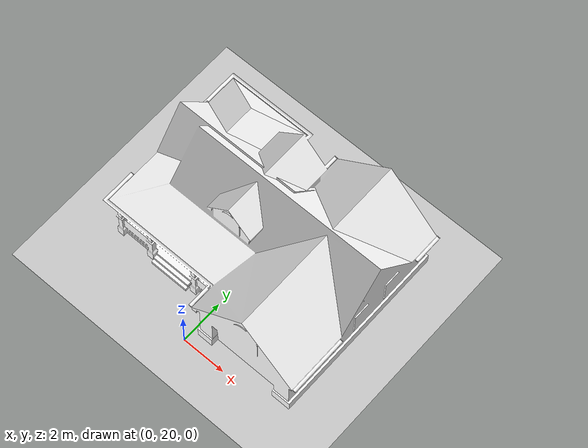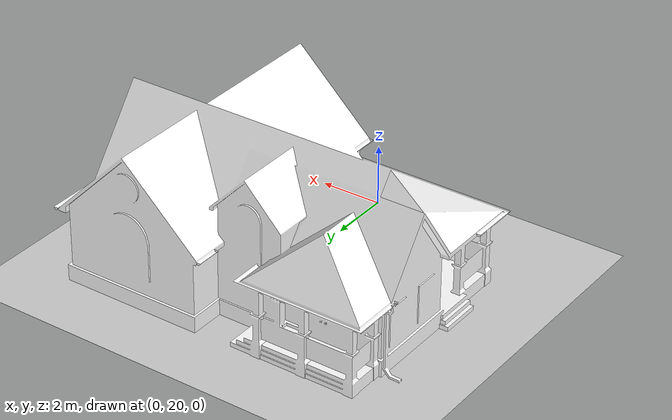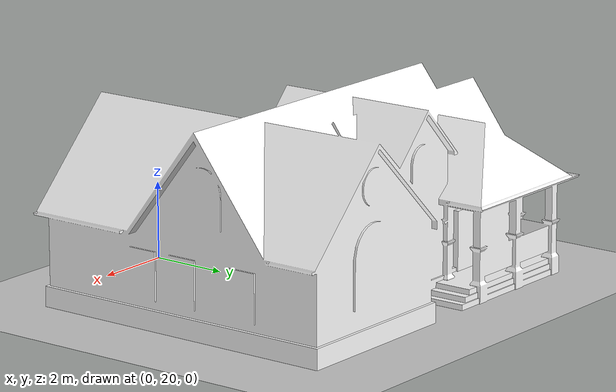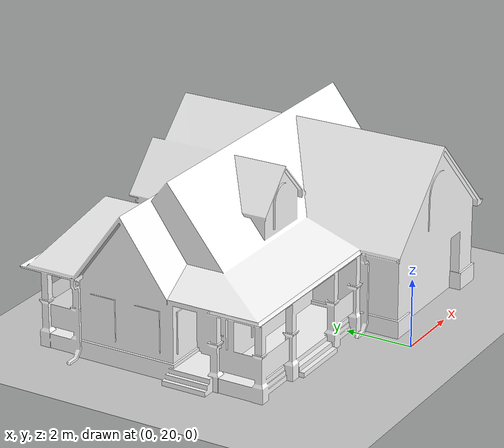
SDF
<?xml version="1.0"?>
<sdf version="1.4">
  <world name="default">
    <include>
      <uri>model://ground_plane</uri>
    </include>
    <include>
      <uri>model://sun</uri>
    </include>
    <scene>
      <shadows>0</shadows>
    </scene>

    <model name='House 1'>
      <static>1</static>
      <link name='link'>
        <collision name='collision'>
          <geometry>
            <mesh>
              <uri>model://house_1/meshes/house_1.dae</uri>
              <scale>1 1 1</scale>
            </mesh>
          </geometry>
          <max_contacts>10</max_contacts>
          <surface>
            <contact>
              <ode/>
            </contact>
            <bounce/>
            <friction>
              <torsional>
                <ode/>
              </torsional>
              <ode/>
            </friction>
          </surface>
        </collision>
        <visual name='visual'>
          <geometry>
            <mesh>
              <uri>model://house_1/meshes/house_1.dae</uri>
              <scale>1 1 1</scale>
            </mesh>
          </geometry>
          <material>
            <script>
              <uri>model://house_1/materials/scripts</uri>
              <uri>model://house_1/materials/textures</uri>
              <name>House_1/Diffuse</name>
            </script>
            <shader type='normal_map_tangent_space'>
              <normal_map>House_1_Normal.png</normal_map>
            </shader>
          </material>
        </visual>
        <self_collide>0</self_collide>
        <kinematic>0</kinematic>
      </link>
      <pose frame=''>0 25 0 0 -0 0</pose>
    </model>

    <!-- Physics settings -->
    <physics name='default_physics' default='0' type='ode'>
      <max_step_size>0.001</max_step_size>
      <real_time_factor>1</real_time_factor>
      <real_time_update_rate>1000</real_time_update_rate>
    </physics>
  </world>
</sdf>
